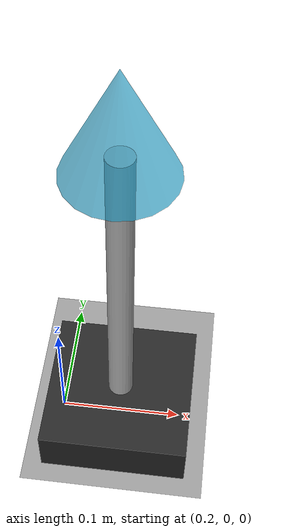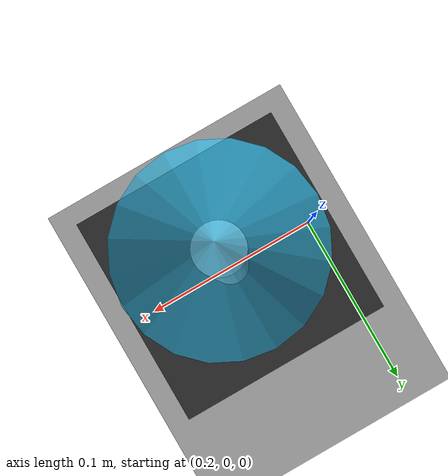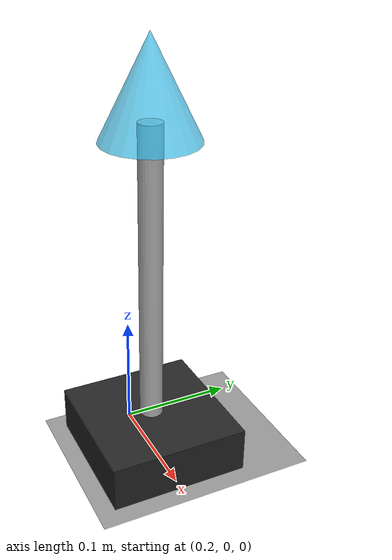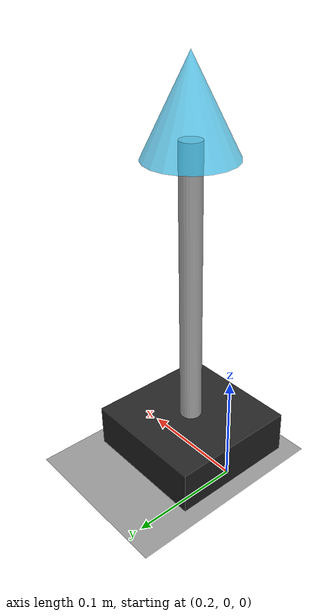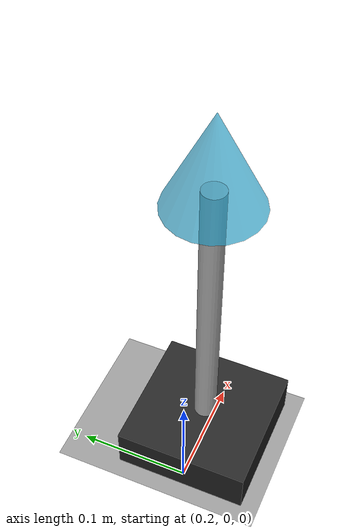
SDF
<?xml version="1.0" ?>
<sdf version="1.7">
    <world name="gem_cutter_world">

        <!-- Basic environment -->
        <gravity>0 0 -9.81</gravity>

        <plugin filename="gz-sim-physics-system" name="gz::sim::systems::Physics" />

        <plugin filename="gz-sim-user-commands-system" name="gz::sim::systems::UserCommands" />

        <plugin filename="gz-sim-scene-broadcaster-system" name="gz::sim::systems::SceneBroadcaster" />

        <plugin filename="gz-sim-sensors-system" name="gz::sim::systems::Sensors" />

        <plugin filename="gz-sim-imu-system" name="gz::sim::systems::Imu" />

        <plugin filename="gz-sim-contact-system" name="gz::sim::systems::Contact" />

        <plugin filename="gz-sim-odometry-publisher-system" name="gz::sim::systems::OdometryPublisher" />

        <!-- Light -->
        <light name="sun" type="directional">
            <cast_shadows>true</cast_shadows>
            <pose>0 0 10 0 0 0</pose>
            <diffuse>1 1 1 1</diffuse>
            <specular>0.2 0.2 0.2 1</specular>
            <direction>-0.5 0.1 -1</direction>
        </light>

        <!-- Ground plane -->
        <model name="ground_plane">
            <static>true</static>
            <pose>0 0 0 0 0 0</pose>
            <link name="ground_link">
                <collision name="collision">
                    <geometry>
                        <plane>
                            <normal>0 0 1</normal>
                            <size>10 10</size>
                        </plane>
                    </geometry>
                </collision>
                <visual name="visual">
                    <geometry>
                        <plane>
                            <normal>0 0 1</normal>
                            <size>10 10</size>
                        </plane>
                    </geometry>
                    <material>
                        <ambient>0.6 0.6 0.6 1</ambient>
                        <diffuse>0.6 0.6 0.6 1</diffuse>
                    </material>
                </visual>
            </link>
        </model>

        <model name="gem_stand">
            <static>true</static>
            <pose>0.25 0 0 0 0 0</pose>

            <link name="stand_link">

                <!-- Base block -->
                <collision name="base_collision">
                    <pose>0 0 0.02 0 0 0</pose>
                    <geometry>
                        <box>
                            <size>0.12 0.12 0.04</size>
                        </box>
                    </geometry>
                </collision>
                <visual name="base_visual">
                    <pose>0 0 0.02 0 0 0</pose>
                    <geometry>
                        <box>
                            <size>0.12 0.12 0.04</size>
                        </box>
                    </geometry>
                    <material>
                        <ambient>0.15 0.15 0.15 1</ambient>
                        <diffuse>0.15 0.15 0.15 1</diffuse>
                    </material>
                </visual>

                <!-- Vertical rod -->
                <collision name="rod_collision">
                    <pose>0 0 0.17 0 0 0</pose>
                    <geometry>
                        <cylinder>
                            <radius>0.01</radius>
                            <length>0.26</length>
                        </cylinder>
                    </geometry>
                </collision>
                <visual name="rod_visual">
                    <pose>0 0 0.17 0 0 0</pose>
                    <geometry>
                        <cylinder>
                            <radius>0.01</radius>
                            <length>0.26</length>
                        </cylinder>
                    </geometry>
                    <material>
                        <ambient>0.75 0.75 0.75 1</ambient>
                        <diffuse>0.75 0.75 0.75 1</diffuse>
                    </material>
                </visual>

                <!-- "Gem" (simple diamond-ish: a short cone) -->
                <collision name="gem_collision">
                    <pose>0 0 0.325 0 0 0</pose>
                    <geometry>
                        <cone>
                            <radius>0.04</radius>
                            <length>0.08</length>
                        </cone>
                    </geometry>
                </collision>
                <visual name="gem_visual">
                    <pose>0 0 0.325 0 0 0</pose>
                    <geometry>
                        <cone>
                            <radius>0.04</radius>
                            <length>0.08</length>
                        </cone>
                    </geometry>
                    <material>
                        <ambient>0.2 0.8 1.0 0.7</ambient>
                        <diffuse>0.2 0.8 1.0 0.7</diffuse>
                        <specular>0.9 0.9 0.9 1</specular>
                    </material>
                </visual>

            </link>
        </model>

    </world>
</sdf>
